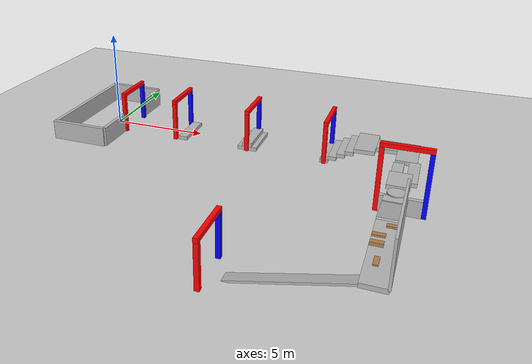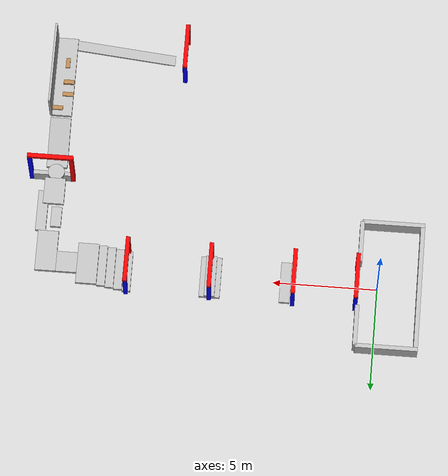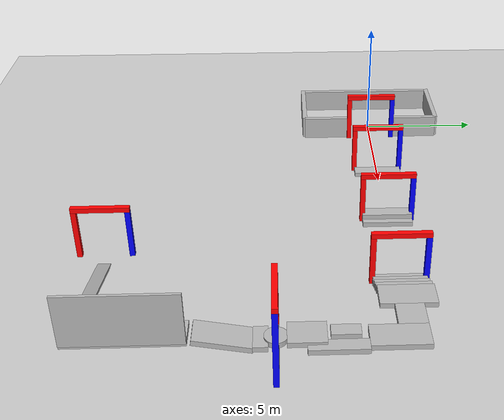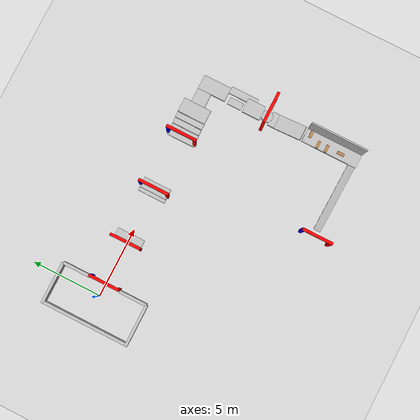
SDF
<sdf version="1.3">
 <world name="default">
  <include><uri>model://ground_plane</uri></include>
  <model name="starting_pen">
   <static>true</static>
   <pose>-2.0 0 0.5 0 0 0</pose>
   <link name="link">
    <collision name="back_collision"><geometry><box><size>0.2 6 1.0</size></box></geometry></collision>
    <visual name="back_visual">
     <geometry><box><size>0.2 6 1.0</size></box></geometry>
     <material>
      <script><uri>file://media/materials/scripts/drc_qual.material</uri><name>DRCQual/WarningWall</name></script>
     </material>
    </visual>
    <collision name="left_collision">
     <pose>1.4 -3.1 0 0 0 0</pose>
     <geometry><box><size>3 0.2 1.0</size></box></geometry>
    </collision>
    <visual name="left_visual_lower">
     <pose>1.4 -3.1 0.0 0 0 0</pose>
     <geometry><box><size>3 0.2 1.0</size></box></geometry>
     <material>
      <script><uri>file://media/materials/scripts/drc_qual.material</uri><name>DRCQual/WarningWall</name></script>
     </material>
    </visual>
    <collision name="right_collision">
     <pose>1.4 3.1 0 0 0 0</pose>
     <geometry><box><size>3 0.2 1.0</size></box></geometry>
    </collision>
    <visual name="right_visual">
     <pose>1.4 3.1 0 0 0 0</pose>
     <geometry><box><size>3 0.2 1.0</size></box></geometry>
     <material>
      <script><uri>file://media/materials/scripts/drc_qual.material</uri><name>DRCQual/WarningWall</name></script>
     </material>
    </visual>
    <collision name="front_right_collision">
     <pose>2.9 2.1 0 0 0 0</pose>
     <geometry><box><size>0.2 2.0 1.0</size></box></geometry>
    </collision>
    <visual name="front_right_visual">
     <pose>2.9 2.1 0 0 0 0</pose>
     <geometry><box><size>0.2 2.0 1.0</size></box></geometry>
     <material>
      <script><uri>file://media/materials/scripts/drc_qual.material</uri><name>DRCQual/WarningWall</name></script>
     </material>
    </visual>
    <collision name="front_left_collision">
     <pose>2.9 -2.1 0 0 0 0</pose>
     <geometry><box><size>0.2 2.0 1.0</size></box></geometry>
    </collision>
    <visual name="front_left_visual">
     <pose>2.9 -2.1 0 0 0 0</pose>
     <geometry><box><size>0.2 2.0 1.0</size></box></geometry>
     <material>
      <script><uri>file://media/materials/scripts/drc_qual.material</uri><name>DRCQual/WarningWall</name></script>
     </material>
    </visual>
   </link>
  </model>
  <model name="gate0">
   <static>true</static>
   <pose>1 0 1.0 0 0 0</pose>
   <link name="link">
    <collision name="right_collision">
     <pose>0 -1.0 0 0 0 0</pose>
     <geometry><box><size>0.2 0.2 2.0</size></box></geometry>
    </collision>
    <visual name="right_visual">
     <pose>0 -1.0 0 0 0 0</pose>
     <geometry><box><size>0.2 0.2 2.0</size></box></geometry>
     <material>
      <ambient>1 0 0 0</ambient>
      <diffuse>1 0 0 0</diffuse>
      <emissive>.2 0 0 0</emissive>
      <specular>.1 .1 .1 0</specular>
     </material>
    </visual>
    <collision name="left_collision">
     <pose>0 1.0 0 0 0 0</pose>
     <geometry><box><size>0.2 0.2 2.0</size></box></geometry>
    </collision>
    <visual name="left_visual">
     <pose>0 1.0 0 0 0 0</pose>
     <geometry><box><size>0.2 0.2 2.0</size></box></geometry>
     <material>
      <ambient>0 0 1 0</ambient>
      <diffuse>0 0 1 0</diffuse>
      <emissive>0 0 .2 0</emissive>
      <specular>.1 .1 .1 0</specular>
     </material>
    </visual>
    <collision name="top_collision">
     <pose>0 0 1.1 0 0 0</pose>
     <geometry><box><size>0.2 2.2 0.2</size></box></geometry>
    </collision>
    <visual name="top_visual">
     <pose>0 0 1.1 0 0 0</pose>
     <geometry><box><size>0.2 2.2 0.2</size></box></geometry>
     <material>
      <ambient>1 0 0 0</ambient>
      <diffuse>1 0 0 0</diffuse>
      <emissive>.2 0 0 0</emissive>
      <specular>.1 .1 .1 0</specular>
     </material>
    </visual>
   </link>
  </model>
  <model name="gate1">
   <static>true</static>
   <pose>4 0 1.0 0 0 0</pose>
   <link name="link">
    <collision name="right_collision">
     <pose>0 -1.0 0 0 0 0</pose>
     <geometry><box><size>0.2 0.2 2.0</size></box></geometry>
    </collision>
    <visual name="right_visual">
     <pose>0 -1.0 0 0 0 0</pose>
     <geometry><box><size>0.2 0.2 2.0</size></box></geometry>
     <material>
      <ambient>1 0 0 0</ambient>
      <diffuse>1 0 0 0</diffuse>
      <emissive>.2 0 0 0</emissive>
      <specular>.1 .1 .1 0</specular>
     </material>
    </visual>
    <collision name="left_collision">
     <pose>0 1.0 0 0 0 0</pose>
     <geometry><box><size>0.2 0.2 2.0</size></box></geometry>
    </collision>
    <visual name="left_visual">
     <pose>0 1.0 0 0 0 0</pose>
     <geometry><box><size>0.2 0.2 2.0</size></box></geometry>
     <material>
      <ambient>0 0 1 0</ambient>
      <diffuse>0 0 1 0</diffuse>
      <emissive>0 0 .2 0</emissive>
      <specular>.1 .1 .1 0</specular>
     </material>
    </visual>
    <collision name="top_collision">
     <pose>0 0 1.1 0 0 0</pose>
     <geometry><box><size>0.2 2.2 0.2</size></box></geometry>
    </collision>
    <visual name="top_visual">
     <pose>0 0 1.1 0 0 0</pose>
     <geometry><box><size>0.2 2.2 0.2</size></box></geometry>
     <material>
      <ambient>1 0 0 0</ambient>
      <diffuse>1 0 0 0</diffuse>
      <emissive>.2 0 0 0</emissive>
      <specular>.1 .1 .1 0</specular>
     </material>
    </visual>
   </link>
  </model>
  <model name="gate2">
   <static>true</static>
   <pose>8 0 1.0 0 0 0</pose>
   <link name="link">
    <collision name="right_collision">
     <pose>0 -1.0 0 0 0 0</pose>
     <geometry><box><size>0.2 0.2 2.0</size></box></geometry>
    </collision>
    <visual name="right_visual">
     <pose>0 -1.0 0 0 0 0</pose>
     <geometry><box><size>0.2 0.2 2.0</size></box></geometry>
     <material>
      <ambient>1 0 0 0</ambient>
      <diffuse>1 0 0 0</diffuse>
      <emissive>.2 0 0 0</emissive>
      <specular>.1 .1 .1 0</specular>
     </material>
    </visual>
    <collision name="left_collision">
     <pose>0 1.0 0 0 0 0</pose>
     <geometry><box><size>0.2 0.2 2.0</size></box></geometry>
    </collision>
    <visual name="left_visual">
     <pose>0 1.0 0 0 0 0</pose>
     <geometry><box><size>0.2 0.2 2.0</size></box></geometry>
     <material>
      <ambient>0 0 1 0</ambient>
      <diffuse>0 0 1 0</diffuse>
      <emissive>0 0 .2 0</emissive>
      <specular>.1 .1 .1 0</specular>
     </material>
    </visual>
    <collision name="top_collision">
     <pose>0 0 1.1 0 0 0</pose>
     <geometry><box><size>0.2 2.2 0.2</size></box></geometry>
    </collision>
    <visual name="top_visual">
     <pose>0 0 1.1 0 0 0</pose>
     <geometry><box><size>0.2 2.2 0.2</size></box></geometry>
     <material>
      <ambient>1 0 0 0</ambient>
      <diffuse>1 0 0 0</diffuse>
      <emissive>.2 0 0 0</emissive>
      <specular>.1 .1 .1 0</specular>
     </material>
    </visual>
   </link>
  </model>
  <model name="gate3">
   <static>true</static>
   <pose>12 0 1.0 0 0 0</pose>
   <link name="link">
    <collision name="right_collision">
     <pose>0 -1.0 0 0 0 0</pose>
     <geometry><box><size>0.2 0.2 2.0</size></box></geometry>
    </collision>
    <visual name="right_visual">
     <pose>0 -1.0 0 0 0 0</pose>
     <geometry><box><size>0.2 0.2 2.0</size></box></geometry>
     <material>
      <ambient>1 0 0 0</ambient>
      <diffuse>1 0 0 0</diffuse>
      <emissive>.2 0 0 0</emissive>
      <specular>.1 .1 .1 0</specular>
     </material>
    </visual>
    <collision name="left_collision">
     <pose>0 1.0 0 0 0 0</pose>
     <geometry><box><size>0.2 0.2 2.0</size></box></geometry>
    </collision>
    <visual name="left_visual">
     <pose>0 1.0 0 0 0 0</pose>
     <geometry><box><size>0.2 0.2 2.0</size></box></geometry>
     <material>
      <ambient>0 0 1 0</ambient>
      <diffuse>0 0 1 0</diffuse>
      <emissive>0 0 .2 0</emissive>
      <specular>.1 .1 .1 0</specular>
     </material>
    </visual>
    <collision name="top_collision">
     <pose>0 0 1.1 0 0 0</pose>
     <geometry><box><size>0.2 2.2 0.2</size></box></geometry>
    </collision>
    <visual name="top_visual">
     <pose>0 0 1.1 0 0 0</pose>
     <geometry><box><size>0.2 2.2 0.2</size></box></geometry>
     <material>
      <ambient>1 0 0 0</ambient>
      <diffuse>1 0 0 0</diffuse>
      <emissive>.2 0 0 0</emissive>
      <specular>.1 .1 .1 0</specular>
     </material>
    </visual>
   </link>
  </model>
  <model name="gate4">
   <static>true</static>
   <pose>16 -4.5 1.5 0 0 -1.5707</pose>
   <link name="link">
    <collision name="right_collision">
     <pose>0 -1.0 0 0 0 0</pose>
     <geometry><box><size>0.2 0.2 3.0</size></box></geometry>
    </collision>
    <visual name="right_visual">
     <pose>0 -1.0 0 0 0 0</pose>
     <geometry><box><size>0.2 0.2 3.0</size></box></geometry>
     <material>
      <ambient>1 0 0 0</ambient>
      <diffuse>1 0 0 0</diffuse>
      <emissive>.2 0 0 0</emissive>
      <specular>.1 .1 .1 0</specular>
     </material>
    </visual>
    <collision name="left_collision">
     <pose>0 1.0 0 0 0 0</pose>
     <geometry><box><size>0.2 0.2 3.0</size></box></geometry>
    </collision>
    <visual name="left_visual">
     <pose>0 1.0 0 0 0 0</pose>
     <geometry><box><size>0.2 0.2 3.0</size></box></geometry>
     <material>
      <ambient>0 0 1 0</ambient>
      <diffuse>0 0 1 0</diffuse>
      <emissive>0 0 .2 0</emissive>
      <specular>.1 .1 .1 0</specular>
     </material>
    </visual>
    <collision name="top_collision">
     <pose>0 0 1.6 0 0 0</pose>
     <geometry><box><size>0.2 2.2 0.2</size></box></geometry>
    </collision>
    <visual name="top_visual">
     <pose>0 0 1.6 0 0 0</pose>
     <geometry><box><size>0.2 2.2 0.2</size></box></geometry>
     <material>
      <ambient>1 0 0 0</ambient>
      <diffuse>1 0 0 0</diffuse>
      <emissive>.2 0 0 0</emissive>
      <specular>.1 .1 .1 0</specular>
     </material>
    </visual>
   </link>
  </model>
  <model name="gate4_block">
   <static>true</static>
   <pose>16 -4.5 0.4 0 0 0</pose>
   <link name="link">
    <collision name="collision"><geometry><box><size>1.8 0.2 .8</size></box></geometry></collision>
    <visual name="visual"><geometry><box><size>1.8 0.2 .8</size></box></geometry></visual>
   </link>
  </model>
  <model name="gate5">
   <static>true</static>
   <pose>10 -11 1.0 0 0 0</pose>
   <link name="link">
    <collision name="right_collision">
     <pose>0 -1.0 0 0 0 0</pose>
     <geometry><box><size>0.2 0.2 2.0</size></box></geometry>
    </collision>
    <visual name="right_visual">
     <pose>0 -1.0 0 0 0 0</pose>
     <geometry><box><size>0.2 0.2 2.0</size></box></geometry>
     <material>
      <ambient>1 0 0 0</ambient>
      <diffuse>1 0 0 0</diffuse>
      <emissive>.2 0 0 0</emissive>
      <specular>.1 .1 .1 0</specular>
     </material>
    </visual>
    <collision name="left_collision">
     <pose>0 1.0 0 0 0 0</pose>
     <geometry><box><size>0.2 0.2 2.0</size></box></geometry>
    </collision>
    <visual name="left_visual">
     <pose>0 1.0 0 0 0 0</pose>
     <geometry><box><size>0.2 0.2 2.0</size></box></geometry>
     <material>
      <ambient>0 0 1 0</ambient>
      <diffuse>0 0 1 0</diffuse>
      <emissive>0 0 .2 0</emissive>
      <specular>.1 .1 .1 0</specular>
     </material>
    </visual>
    <collision name="top_collision">
     <pose>0 0 1.1 0 0 0</pose>
     <geometry><box><size>0.2 2.2 0.2</size></box></geometry>
    </collision>
    <visual name="top_visual">
     <pose>0 0 1.1 0 0 0</pose>
     <geometry><box><size>0.2 2.2 0.2</size></box></geometry>
     <material>
      <ambient>1 0 0 0</ambient>
      <diffuse>1 0 0 0</diffuse>
      <emissive>.2 0 0 0</emissive>
      <specular>.1 .1 .1 0</specular>
     </material>
    </visual>
   </link>
  </model>
  <model name="box_obstacle_1">
   <static>true</static>
   <pose>4.4 0 0.1 0 0 0</pose>
   <link name="link">
    <collision name="collision"><geometry><box><size>0.5 2.0 0.2</size></box></geometry></collision>
    <visual name="visual">
     <geometry><box><size>0.5 2.0 0.2</size></box></geometry>
     <material>
      <script><uri>file://media/materials/scripts/drc_qual.material</uri><name>DRCQual/MetalPlate</name></script>
     </material>
    </visual>
   </link>
  </model>
  <model name="box_obstacle_2">
   <static>true</static>
   <pose>8 0 0.1 0 0 0</pose>
   <link name="link">
    <collision name="collision"><geometry><box><size>1.0 2.0 0.2</size></box></geometry></collision>
    <visual name="visual">
     <geometry><box><size>1.0 2.0 0.2</size></box></geometry>
     <material>
      <script><uri>file://media/materials/scripts/drc_qual.material</uri><name>DRCQual/MetalPlate</name></script>
     </material>
    </visual>
    <collision name="collision_step">
     <pose>0 0 0.20 0 0 0</pose>
     <geometry><box><size>0.5 2.0 0.2</size></box></geometry>
    </collision>
    <visual name="visual_step">
     <pose>0 0 0.20 0 0 0</pose>
     <geometry><box><size>0.5 2.0 0.2</size></box></geometry>
     <material>
      <script><uri>file://media/materials/scripts/drc_qual.material</uri><name>DRCQual/MetalPlate</name></script>
     </material>
    </visual>
   </link>
  </model>
  <model name="stairs_1">
   <static>true</static>
   <pose>12 0 0.1 0 0 0</pose>
   <link name="link">
    <collision name="collision_step_1"><geometry><box><size>0.4 2.0 0.2</size></box></geometry></collision>
    <visual name="visual_step_1">
     <geometry><box><size>0.4 2.0 0.2</size></box></geometry>
     <material>
      <script><uri>file://media/materials/scripts/drc_qual.material</uri><name>DRCQual/MetalPlate</name></script>
     </material>
    </visual>
    <collision name="collision_step_2">
     <pose>0.4 0 0.2 0 0 0</pose>
     <geometry><box><size>0.4 2.0 0.2</size></box></geometry>
    </collision>
    <visual name="visual_step_2">
     <pose>0.4 0 0.2 0 0 0</pose>
     <geometry><box><size>0.4 2.0 0.2</size></box></geometry>
     <material>
      <script><uri>file://media/materials/scripts/drc_qual.material</uri><name>DRCQual/MetalPlate</name></script>
     </material>
    </visual>
    <collision name="collision_step_3">
     <pose>0.8 0 0.4 0 0 0</pose>
     <geometry><box><size>0.4 2.0 0.2</size></box></geometry>
    </collision>
    <visual name="visual_step_3">
     <pose>0.8 0 0.4 0 0 0</pose>
     <geometry><box><size>0.4 2.0 0.2</size></box></geometry>
     <material>
      <script><uri>file://media/materials/scripts/drc_qual.material</uri><name>DRCQual/MetalPlate</name></script>
     </material>
    </visual>
    <collision name="collision_step_4">
     <pose>1.2 0 0.6 0 0 0</pose>
     <geometry><box><size>0.4 2.0 0.2</size></box></geometry>
    </collision>
    <visual name="visual_step_4">
     <pose>1.2 0 0.6 0 0 0</pose>
     <geometry><box><size>0.4 2.0 0.2</size></box></geometry>
     <material>
      <script><uri>file://media/materials/scripts/drc_qual.material</uri><name>DRCQual/MetalPlate</name></script>
     </material>
    </visual>
   </link>
  </model>
  <model name="landing">
   <static>true</static>
   <pose>13.9 0 0.9 0 0 0</pose>
   <link name="link">
    <collision name="collision_1"><geometry><box><size>1.0 2.0 0.2</size></box></geometry></collision>
    <visual name="visual_1">
     <geometry><box><size>1.0 2.0 0.2</size></box></geometry>
     <material>
      <script><uri>file://media/materials/scripts/drc_qual.material</uri><name>DRCQual/MetalPlate</name></script>
     </material>
    </visual>
    <collision name="collision_2">
     <pose>1.0 0 0 0 0 0</pose>
     <geometry><box><size>1.0 1.0 0.2</size></box></geometry>
    </collision>
    <visual name="visual_2">
     <pose>1.0 0 0 0 0 0</pose>
     <geometry><box><size>1.0 1.0 0.2</size></box></geometry>
     <material>
      <script><uri>file://media/materials/scripts/drc_qual.material</uri><name>DRCQual/MetalPlate</name></script>
     </material>
    </visual>
    <collision name="collision_3">
     <pose>2.0 -0.5 0 0 0 0</pose>
     <geometry><box><size>1.0 2.0 0.2</size></box></geometry>
    </collision>
    <visual name="visual_3">
     <pose>2.0 -0.5 0 0 0 0</pose>
     <geometry><box><size>1.0 2.0 0.2</size></box></geometry>
     <material>
      <script><uri>file://media/materials/scripts/drc_qual.material</uri><name>DRCQual/MetalPlate</name></script>
     </material>
    </visual>
   </link>
  </model>
  <model name="platform_1">
   <static>true</static>
   <pose>15.6 -2.23 0.9 0 0 0</pose>
   <link name="link">
    <collision name="collision"><geometry><box><size>0.5 1.0 0.2</size></box></geometry></collision>
    <visual name="visual">
     <geometry><box><size>0.5 1.0 0.2</size></box></geometry>
     <material>
      <script><uri>file://media/materials/scripts/drc_qual.material</uri><name>DRCQual/MetalPlate</name></script>
     </material>
    </visual>
   </link>
  </model>
  <model name="platform_1a">
   <static>true</static>
   <pose>16.3 -2.5 0.9 0 0 0</pose>
   <link name="link">
    <collision name="collision"><geometry><box><size>0.5 2.0 0.2</size></box></geometry></collision>
    <visual name="visual">
     <geometry><box><size>0.5 2.0 0.2</size></box></geometry>
     <material>
      <script><uri>file://media/materials/scripts/drc_qual.material</uri><name>DRCQual/MetalPlate</name></script>
     </material>
    </visual>
   </link>
  </model>
  <model name="platform_2">
   <static>true</static>
   <pose>15.8 -3.5 1.0 0 0 0</pose>
   <link name="link">
    <collision name="collision"><geometry><box><size>1.0 1.3 0.2</size></box></geometry></collision>
    <visual name="visual">
     <geometry><box><size>1.0 1.3 0.2</size></box></geometry>
     <material>
      <script><uri>file://media/materials/scripts/drc_qual.material</uri><name>DRCQual/MetalPlate</name></script>
     </material>
    </visual>
   </link>
  </model>
  <model name="platform_3">
   <static>true</static>
   <pose>15.8 -4.5 0.9 0 0 0</pose>
   <link name="link">
    <collision name="collision">
     <geometry><cylinder><radius>0.4</radius><length>0.2</length></cylinder></geometry>
    </collision>
    <visual name="visual">
     <geometry><cylinder><radius>0.4</radius><length>0.2</length></cylinder></geometry>
     <material>
      <script><uri>file://media/materials/scripts/drc_qual.material</uri><name>DRCQual/MetalPlate</name></script>
     </material>
    </visual>
   </link>
  </model>
  <model name="platform_4">
   <static>true</static>
   <pose>15.8 -5.0 0.85 0 0 0</pose>
   <link name="link">
    <collision name="collision"><geometry><box><size>1.0 0.5 0.2</size></box></geometry></collision>
    <visual name="visual">
     <geometry><box><size>1.0 0.5 0.2</size></box></geometry>
     <material>
      <script><uri>file://media/materials/scripts/drc_qual.material</uri><name>DRCQual/MetalPlate</name></script>
     </material>
    </visual>
   </link>
  </model>
  <model name="platform_5">
   <static>true</static>
   <pose>15.8 -6.2 1.0 -0.2 0 0</pose>
   <link name="link">
    <collision name="collision"><geometry><box><size>1.0 2.0 0.2</size></box></geometry></collision>
    <visual name="visual">
     <geometry><box><size>1.0 2.0 0.2</size></box></geometry>
     <material>
      <script><uri>file://media/materials/scripts/drc_qual.material</uri><name>DRCQual/MetalPlate</name></script>
     </material>
    </visual>
   </link>
  </model>
  <model name="platform_6">
   <static>true</static>
   <pose>15.8 -9.3 1.18 0 0 0</pose>
   <link name="link">
    <collision name="collision"><geometry><box><size>1.0 4.0 0.2</size></box></geometry></collision>
    <visual name="visual">
     <geometry><box><size>1.0 4.0 0.2</size></box></geometry>
     <material>
      <script><uri>file://media/materials/scripts/drc_qual.material</uri><name>DRCQual/MetalPlate</name></script>
     </material>
    </visual>
   </link>
  </model>
  <model name="wall_6">
   <static>true</static>
   <pose>16.3 -9.3 2.2 0 0 0</pose>
   <link name="link">
    <collision name="collision"><geometry><box><size>0.1 4.0 2.0</size></box></geometry></collision>
    <visual name="visual">
     <geometry><box><size>0.1 4.0 2.0</size></box></geometry>
     <material>
      <script><uri>file://media/materials/scripts/drc_qual.material</uri><name>DRCQual/MetalPlate</name></script>
     </material>
    </visual>
   </link>
  </model>
  <model name="tunnel_obstacle_1">
   <static>true</static>
   <pose>16.0 -7.67 1.31 0 0 0</pose>
   <link name="link">
    <collision name="collision"><geometry><box><size>0.5 0.2 0.1</size></box></geometry></collision>
    <visual name="visual">
     <geometry><box><size>0.5 0.2 0.1</size></box></geometry>
     <material>
      <script><uri>file://media/materials/scripts/drc_qual.material</uri><name>DRCQual/Wood</name></script>
     </material>
    </visual>
   </link>
  </model>
  <model name="tunnel_obstacle_2">
   <static>true</static>
   <pose>15.57 -8.39 1.31 0 0 0</pose>
   <link name="link">
    <collision name="collision"><geometry><box><size>0.5 0.2 0.1</size></box></geometry></collision>
    <visual name="visual">
     <geometry><box><size>0.5 0.2 0.1</size></box></geometry>
     <material>
      <script><uri>file://media/materials/scripts/drc_qual.material</uri><name>DRCQual/Wood</name></script>
     </material>
    </visual>
   </link>
  </model>
  <model name="tunnel_obstacle_3">
   <static>true</static>
   <pose>15.57 -9.0 1.33 0 0 0</pose>
   <link name="link">
    <collision name="collision"><geometry><box><size>0.5 0.2 0.2</size></box></geometry></collision>
    <visual name="visual">
     <geometry><box><size>0.5 0.2 0.2</size></box></geometry>
     <material>
      <script><uri>file://media/materials/scripts/drc_qual.material</uri><name>DRCQual/Wood</name></script>
     </material>
    </visual>
   </link>
  </model>
  <model name="tunnel_obstacle_4">
   <static>true</static>
   <pose>15.7 -10 1.3 0 0 1.5707</pose>
   <link name="link">
    <collision name="collision"><geometry><box><size>0.5 0.2 0.1</size></box></geometry></collision>
    <visual name="visual">
     <geometry><box><size>0.5 0.2 0.1</size></box></geometry>
     <material>
      <script><uri>file://media/materials/scripts/drc_qual.material</uri><name>DRCQual/Wood</name></script>
     </material>
    </visual>
   </link>
  </model>
  <model name="ramp_down">
   <static>true</static>
   <pose>13 -11.0 0.56 0 -0.244 0</pose>
   <link name="link">
    <collision name="collision"><geometry><box><size>5.0 0.5 0.1</size></box></geometry></collision>
    <visual name="visual">
     <geometry><box><size>5.0 0.5 0.1</size></box></geometry>
     <material>
      <script>
       <uri>file://media/materials/scripts/drc_qual.material</uri>
       <name>DRCQual/MetalPlateRamp</name>
      </script>
     </material>
    </visual>
   </link>
  </model>
 </world>
</sdf>
